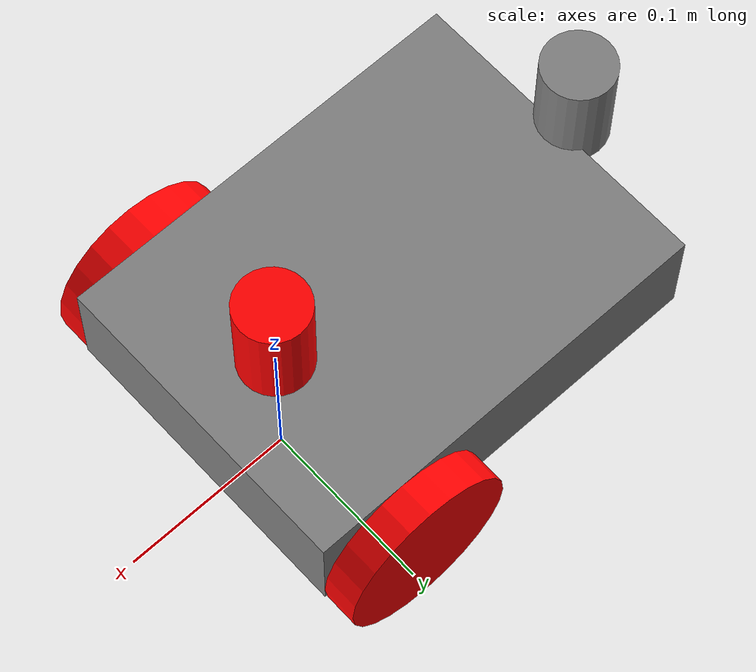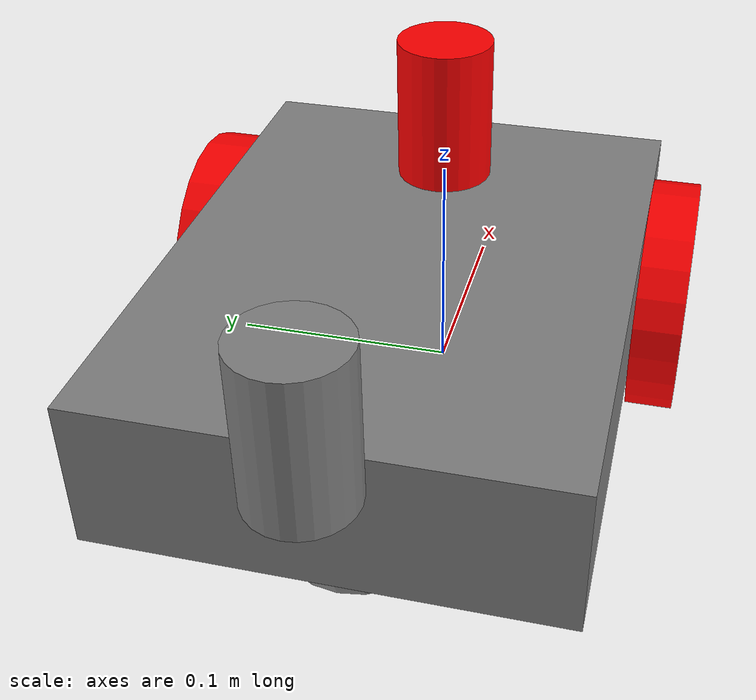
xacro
<?xml version="1.0"?>
<robot name="dtw_robot" xmlns:xacro="http://ros.org/wiki/xacro">
  <xacro:arg name="robot_name" default="dtw_robot"/>
  <xacro:include filename="$(find nav_lecture)/xacro/move_macro.xacro" />
  <xacro:include filename="$(find nav_lecture)/xacro/laser_macro.xacro" />
  <xacro:include filename="$(find nav_lecture)/xacro/imu_macro.xacro" />
  <xacro:include filename="$(find nav_lecture)/xacro/camera_macro.xacro" />
  <xacro:include filename="$(find nav_lecture)/xacro/sonar_macro.xacro" />
  <link name="base_link"/>

  <xacro:body_macro parent="base_link" />
  <xacro:wheel_macro prefix="left_wheel"  parent="base_link" xyz="0 0.1 0.05"/>
  <xacro:wheel_macro prefix="right_wheel" parent="base_link" xyz="0 -0.1 0.05"/>
  <xacro:laser_macro prefix="front_laser" parent="base_link" xyz="0 0 0.13" robot_name="$(arg robot_name)"/>
  <xacro:imu_macro prefix="imu" parent="base_link" xyz="-0.05 0 0.10" robot_name="$(arg robot_name)"/>
  <xacro:camera_macro prefix="head_camera" parent="base_link" xyz="0.1 0 0.08"/>
  <xacro:sonar_macro prefix="sonar_back" parent="base_link" xyz="-0.2 0 0.12" rpy="0 0 3.1415" robot_name="$(arg robot_name)"/>
  <gazebo>
    <plugin name="gazebo_ros_control" filename="libgazebo_ros_control.so">
      <robotNamespace>$(arg robot_name)</robotNamespace>
      <robotSimType>gazebo_ros_control/DefaultRobotHWSim</robotSimType>
      <legacyModeNS>true</legacyModeNS>
    </plugin>
  </gazebo>
</robot>

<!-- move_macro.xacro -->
<robot name="dtw_robot" xmlns:xacro="http://ros.org/wiki/xacro">
  <material name="gray">
    <color rgba="0.5 0.5 0.5 1.0"/>
  </material>
  <material name="red">
    <color rgba="1.0 0.0 0.0 1.0"/>
  </material>

  <xacro:macro name="wheel_macro" params="parent prefix xyz">
    <joint name="${prefix}_joint" type="continuous">
      <origin xyz="${xyz}" rpy="${radians(-90)} 0 0"/>
      <parent link="${parent}"/>
      <child  link="${prefix}_link"/>
      <axis xyz="0 0 1" />
      <limit velocity="24.0" effort="0.4" />
      <dynamics damping="0.1"/>
    </joint>
    <transmission name="${prefix}_trans">
      <type>transmission_interface/SimpleTransmission</type>
      <joint name="${prefix}_joint">
          <hardwareInterface>hardware_interface/VelocityJointInterface</hardwareInterface>
      </joint>
      <actuator name="${prefix}_motor">
        <hardwareInterface>hardware_interface/VelocityJointInterface</hardwareInterface>
        <mechanismReduction>1</mechanismReduction>
      </actuator>
    </transmission>
    <link name="${prefix}_link">
      <inertial>
        <origin xyz="0 0 0" rpy="0 0 0"/>
        <mass value="0.1"/>
        <inertia ixx="0.0001" ixy="0.0" ixz="0.0" iyy="0.0001" iyz="0.0" izz="0.0001"/>
      </inertial>
      <visual>
        <geometry>
          <cylinder radius="0.05" length="0.02" />
        </geometry>
        <material name="red"/>
      </visual>
      <collision>
        <geometry>
          <cylinder radius="0.05" length="0.02" />
        </geometry>
      </collision>
    </link>
    <gazebo reference="${prefix}_link">
      <material>Gazebo/Red</material>
      <mu1 value="2.5" />
      <mu2 value="2.5" />
      <kp value="50000" />
      <kd value="10" />
    </gazebo>
  </xacro:macro>

  <xacro:macro name="body_macro" params="parent">
    <joint name="body_joint" type="fixed">
      <parent link="${parent}"/>
      <child  link="body_link"/>
      <origin xyz="-0.07 0 0.07" rpy="0 0 0"/>
    </joint>
    <link name="body_link">
      <inertial>
        <origin xyz="0 0 0" rpy="0 0 0"/>
        <mass value="1.0"/>
        <inertia ixx="0.001" ixy="0.0" ixz="0.0" iyy="0.001" iyz="0.0" izz="0.001"/>
      </inertial>
      <visual>
        <origin xyz="0 0 0" rpy="0 0 0" />
        <geometry>
          <box size="0.24 0.18 0.06" />
        </geometry>
        <material name="gray" />
      </visual>
      <collision>
        <origin xyz="0 0 0" rpy="0 0 0" />
        <geometry>
          <box size="0.24 0.178 0.06" />
        </geometry>
      </collision>
    </link>
    <gazebo reference="body_link">
      <material>Gazebo/Gray</material>
    </gazebo>

    <joint name="ball_joint" type="fixed">
      <parent link="${parent}"/>
      <child  link="ball_link"/>
      <origin xyz="-0.14 0 0.04" rpy="0 0 0"/>
    </joint>
    <link name="ball_link">
      <visual>
        <origin xyz="0 0 0" rpy="0 0 0" />
        <geometry>
          <sphere radius="0.04" />
        </geometry>
        <material name="gray" />
      </visual>
      <collision>
        <origin xyz="0 0 0" rpy="0 0 0" />
        <geometry>
          <sphere radius="0.04" />
        </geometry>
        <material name="gray" />
      </collision>
    </link>
    <gazebo reference="ball_link">
      <material>Gazebo/Gray</material>
      <mu1 value="0.5" />
      <mu2 value="0.5" />
    </gazebo>
  </xacro:macro>
</robot>

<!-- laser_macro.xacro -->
<robot name="dtw_robot" xmlns:xacro="http://ros.org/wiki/xacro">
  <xacro:macro name="laser_macro" params="parent prefix xyz robot_name">
    <joint name="${prefix}_joint" type="fixed">
      <parent link="${parent}"/>
      <child  link="${prefix}_link"/>
      <origin xyz="${xyz}" rpy="0 0 0"/>
    </joint>
    <link name="${prefix}_link">
      <visual>
        <origin xyz="0 0 0" rpy="0 0 0" />
        <geometry>
          <cylinder radius="0.02" length="0.06" />
        </geometry>
        <material name="red" />
      </visual>
      <collision>
        <origin xyz="0 0 0" rpy="0 0 0"/>
        <geometry>
          <cylinder radius="0.02" length="0.06" />
        </geometry>
      </collision>
    </link>
    <gazebo reference="${prefix}_link">
      <material>Gazebo/Red</material>
      <sensor type="ray" name="${prefix}">
        <pose>0 0 0 0 0 0</pose>
        <visualize>false</visualize>
        <update_rate>10</update_rate>
        <ray>
          <scan>
            <horizontal>
              <samples>400</samples>
              <resolution>1</resolution>
              <min_angle>${radians(-150)}</min_angle>
              <max_angle>${radians( 150)}</max_angle>
            </horizontal>
          </scan>
          <range>
            <min>0.10</min>
            <max>20.0</max>
            <resolution>0.01</resolution>
          </range>
          <noise>
            <type>gaussian</type>
            <mean>0.0</mean>
            <stddev>0.01</stddev>
          </noise>
        </ray>
        <plugin name="gazebo_ros_lidar_controller" filename="libgazebo_ros_laser.so">
          <topicName>${prefix}/scan</topicName>
          <frameName>${robot_name}/${prefix}_link</frameName>
        </plugin>
      </sensor>
    </gazebo>
  </xacro:macro>
</robot>

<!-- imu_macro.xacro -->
<robot name="dtw_robot" xmlns:xacro="http://ros.org/wiki/xacro">
  <xacro:macro name="imu_macro" params="parent prefix xyz robot_name">
    <joint name="imu_joint" type="fixed">
      <parent link="${parent}"/>
      <child  link="${prefix}_link"/>
      <origin xyz="${xyz}" rpy="0 0 0"/>
    </joint>
    <link name="${prefix}_link"/>
    <gazebo reference="${prefix}_link">
      <gravity>true</gravity>
      <sensor name="imu_sensor" type="imu">
        <always_on>true</always_on>
        <update_rate>100</update_rate>
        <visualize>true</visualize>
        <topic>data</topic>
        <plugin filename="libgazebo_ros_imu_sensor.so" name="imu_plugin">
          <topicName>${prefix}/data</topicName>
          <bodyName>${prefix}_link</bodyName>
          <updateRateHZ>10.0</updateRateHZ>
          <gaussianNoise>0.0</gaussianNoise>
          <xyzOffset>0 0 0</xyzOffset>
          <rpyOffset>0 0 0</rpyOffset>
          <frameName>${robot_name}/${prefix}_link</frameName>
        </plugin>
        <pose>0 0 0 0 0 0</pose>
      </sensor>
    </gazebo>
  </xacro:macro>
</robot>

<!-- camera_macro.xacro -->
<robot name="dtw_robot" xmlns:xacro="http://ros.org/wiki/xacro">
  <xacro:macro name="camera_macro" params="parent prefix xyz">
    <joint name="${prefix}_joint" type="fixed">
      <parent link="${parent}"/>
      <child  link="${prefix}_link"/>
      <origin xyz="${xyz}" rpy="${radians(-90)} 0 ${radians(-90)}"/>
    </joint>
    <link name="${prefix}_link"/>
    <gazebo reference="${prefix}_link">
      <sensor type="camera" name="${prefix}">
        <update_rate>10.0</update_rate>
        <camera name="${prefix}">
          <pose>0 0 0 0 ${radians(-90)} ${radians(90)}</pose>
          <horizontal_fov>1.3962634</horizontal_fov>
          <image>
            <width>800</width>
            <height>600</height>
            <format>R8G8B8</format>
          </image>
          <clip>
            <near>0.02</near>
            <far>300</far>
          </clip>
          <noise>
            <type>gaussian</type>
            <mean>0.0</mean>
            <stddev>0.007</stddev>
          </noise>
        </camera>
        <plugin name="camera_controller" filename="libgazebo_ros_camera.so">
          <alwaysOn>true</alwaysOn>
          <updateRate>0.0</updateRate>
          <cameraName>${prefix}</cameraName>
          <imageTopicName>image_raw</imageTopicName>
          <cameraInfoTopicName>camera_info</cameraInfoTopicName>
          <frameName>${prefix}_link</frameName>
          <hackBaseline>0.07</hackBaseline>
          <distortionK1>0.0</distortionK1>
          <distortionK2>0.0</distortionK2>
          <distortionK3>0.0</distortionK3>
          <distortionT1>0.0</distortionT1>
          <distortionT2>0.0</distortionT2>
        </plugin>
      </sensor>
    </gazebo>
  </xacro:macro>
</robot>

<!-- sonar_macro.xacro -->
<robot name="dtw_robot" xmlns:xacro="http://ros.org/wiki/xacro">
  <xacro:macro name="sonar_macro" params="parent prefix xyz rpy robot_name">
    <joint name="${prefix}_joint" type="fixed">
      <parent link="${parent}"/>
      <child  link="${prefix}_link"/>
      <origin xyz="${xyz}" rpy="${rpy}"/>
    </joint>
    <link name="${prefix}_link">
      <visual>
        <origin xyz="0 0 0" rpy="0 0 0" />
        <geometry>
          <cylinder radius="0.02" length="0.06" />
        </geometry>
        <material name="gray" />
      </visual>
      <collision>
        <origin xyz="0 0 0" rpy="0 0 0"/>
        <geometry>
          <cylinder radius="0.02" length="0.06" />
        </geometry>
      </collision>
    </link>
    <gazebo reference="${prefix}_link">
      <sensor type="ray" name="sonar">
        <pose>0 0 0 0 0 0</pose>
        <update_rate>20</update_rate>
        <ray>
          <scan>
            <horizontal>
              <samples>3</samples>
              <resolution>1</resolution>
              <min_angle>-0.05</min_angle>
              <max_angle>0.05</max_angle>
            </horizontal>
            <vertical>
              <samples>3</samples>
              <resolution>1</resolution>
              <min_angle>-0.05</min_angle>
              <max_angle>0.05</max_angle>
            </vertical>
         </scan>
          <range>
            <min>0.03</min>
            <max>2</max>
            <resolution>0.02</resolution>
          </range>
        </ray>
        <plugin filename="libgazebo_ros_range.so" name="gazebo_ros_range">
          <gaussianNoise>0.005</gaussianNoise>
          <alwaysOn>true</alwaysOn>
          <updateRate>10</updateRate>
          <topicName>${prefix}/range</topicName>
          <frameName>${robot_name}/${prefix}_link</frameName>
          <radiation>ULTRASOUND</radiation>
          <fov>0.1</fov>
        </plugin>
      </sensor>
    </gazebo>
  </xacro:macro>
</robot>
